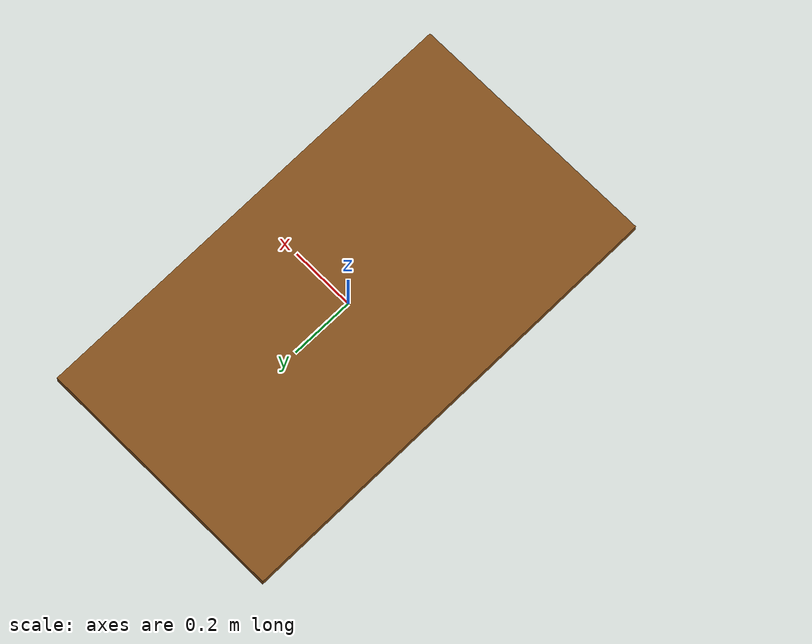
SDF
<?xml version="1.0" ?>
<sdf version="1.6">
  <model name="sim_table">
    <static>true</static>
    <link name="link">
      <collision name="collision">
        <geometry>
          <box><size>0.8 1.43 0.03</size></box>
        </geometry>
      </collision>
      <visual name="visual">
        <geometry>
          <box><size>0.8 1.43 0.03</size></box>
        </geometry>
        <material>
          <ambient>0.5 0.3 0.1 1</ambient>
        </material>
      </visual>
    </link>
  </model>
</sdf>
